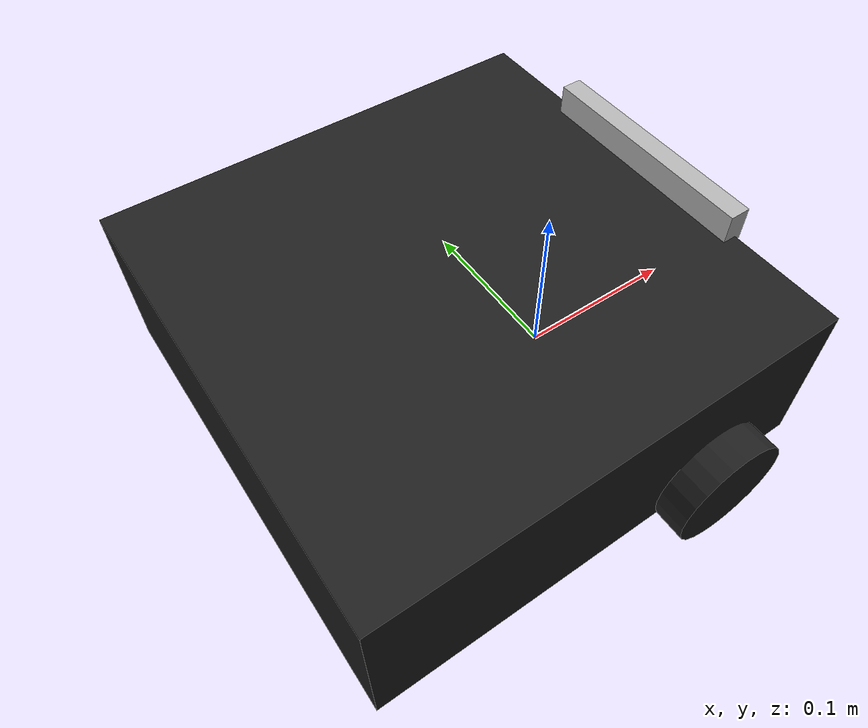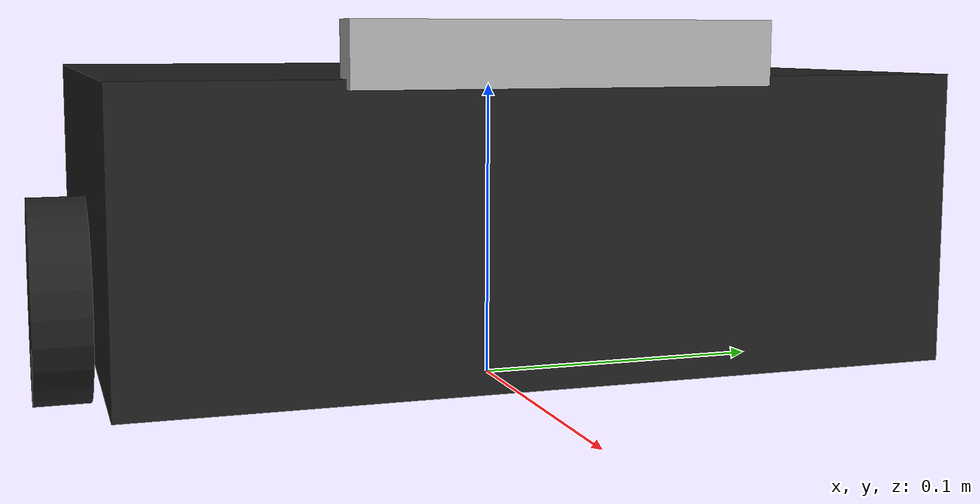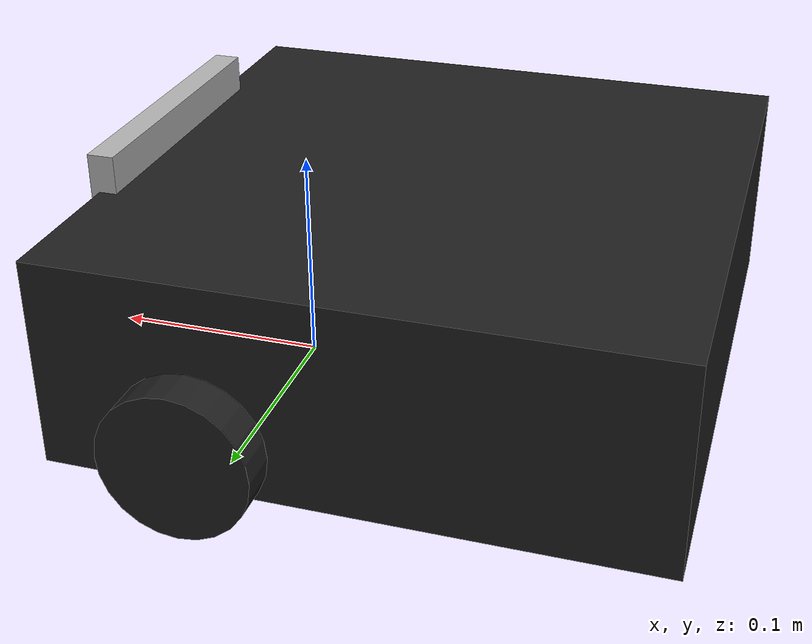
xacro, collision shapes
<?xml version="1.0" ?>
<robot name="turtlebot3_waffle" xmlns:xacro="http://ros.org/wiki/xacro">
  <xacro:arg name="namespace" default="robot_s" />

  <xacro:include filename="$(find turtlebot3_description)/urdf/common_properties.xacro"/>
  <xacro:include filename="$(find guide_robot)/urdf/robot_s.gazebo.xacro"/>

  <xacro:property name="r200_cam_rgb_px" value="0.005"/>
  <xacro:property name="r200_cam_rgb_py" value="0.018"/>
  <xacro:property name="r200_cam_rgb_pz" value="0.013"/>
  <xacro:property name="r200_cam_depth_offset" value="0.01"/>

  <link name="$(arg namespace)/base_footprint"/>

  <joint name="$(arg namespace)/base_joint" type="fixed">
    <parent link="$(arg namespace)/base_footprint"/>
    <child link="$(arg namespace)/base_link" />
    <origin xyz="0 0 0.010" rpy="0 0 0"/>
  </joint>

  <link name="$(arg namespace)/base_link">
    <visual>
      <origin xyz="-0.064 0 0.0" rpy="0 0 0"/>
      <geometry>
        <mesh filename="package://turtlebot3_description/meshes/bases/waffle_base.stl" scale="0.001 0.001 0.001"/>
      </geometry>
      <material name="light_black"/>
    </visual>

    <collision>
      <origin xyz="-0.064 0 0.047" rpy="0 0 0"/>
      <geometry>
        <box size="0.266 0.266 0.094"/>
      </geometry>
    </collision>

    <inertial>
      <origin xyz="0 0 0" rpy="0 0 0"/>
      <mass value="1.3729096e+00"/>
      <inertia ixx="8.7002718e-03" ixy="-4.7576583e-05" ixz="1.1160499e-04"
               iyy="8.6195418e-03" iyz="-3.5422299e-06"
               izz="1.4612727e-02" />
    </inertial>
  </link>

  <joint name="$(arg namespace)/wheel_left_joint" type="continuous">
    <parent link="$(arg namespace)/base_link"/>
    <child link="$(arg namespace)/wheel_left_link"/>
    <origin xyz="0.0 0.144 0.023" rpy="-1.57 0 0"/>
    <axis xyz="0 0 1"/>
  </joint>

  <link name="$(arg namespace)/wheel_left_link">
    <visual>
      <origin xyz="0 0 0" rpy="1.57 0 0"/>
      <geometry>
        <mesh filename="package://turtlebot3_description/meshes/wheels/left_tire.stl" scale="0.001 0.001 0.001"/>
      </geometry>
      <material name="dark"/>
    </visual>

    <collision>
      <origin xyz="0 0 0" rpy="0 0 0"/>
      <geometry>
        <cylinder length="0.018" radius="0.033"/>
      </geometry>
    </collision>

    <inertial>
      <origin xyz="0 0 0" />
      <mass value="2.8498940e-02" />
      <inertia ixx="1.1175580e-05" ixy="-4.2369783e-11" ixz="-5.9381719e-09"
               iyy="1.1192413e-05" iyz="-1.4400107e-11"
               izz="2.0712558e-05" />
      </inertial>
  </link>

  <joint name="$(arg namespace)/wheel_right_joint" type="continuous">
    <parent link="$(arg namespace)/base_link"/>
    <child link="$(arg namespace)/wheel_right_link"/>
    <origin xyz="0.0 -0.144 0.023" rpy="-1.57 0 0"/>
    <axis xyz="0 0 1"/>
  </joint>

  <link name="$(arg namespace)/wheel_right_link">
    <visual>
      <origin xyz="0 0 0" rpy="1.57 0 0"/>
      <geometry>
        <mesh filename="package://turtlebot3_description/meshes/wheels/right_tire.stl" scale="0.001 0.001 0.001"/>
      </geometry>
      <material name="dark"/>
    </visual>

    <collision>
      <origin xyz="0 0 0" rpy="0 0 0"/>
      <geometry>
        <cylinder length="0.018" radius="0.033"/>
      </geometry>
    </collision>

    <inertial>
      <origin xyz="0 0 0" />
      <mass value="2.8498940e-02" />
      <inertia ixx="1.1175580e-05" ixy="-4.2369783e-11" ixz="-5.9381719e-09"
               iyy="1.1192413e-05" iyz="-1.4400107e-11"
               izz="2.0712558e-05" />
      </inertial>
  </link>

  <joint name="$(arg namespace)/caster_back_right_joint" type="fixed">
    <parent link="$(arg namespace)/base_link"/>
    <child link="$(arg namespace)/caster_back_right_link"/>
    <origin xyz="-0.177 -0.064 -0.004" rpy="-1.57 0 0"/>
  </joint>

  <link name="$(arg namespace)/caster_back_right_link">
    <collision>
      <origin xyz="0 0.001 0" rpy="0 0 0"/>
      <geometry>
        <box size="0.030 0.009 0.020"/>
      </geometry>
    </collision>

    <inertial>
      <origin xyz="0 0 0" />
      <mass value="0.005" />
      <inertia ixx="0.001" ixy="0.0" ixz="0.0"
               iyy="0.001" iyz="0.0"
               izz="0.001" />
    </inertial>
  </link>

  <joint name="$(arg namespace)/caster_back_left_joint" type="fixed">
    <parent link="$(arg namespace)/base_link"/>
    <child link="$(arg namespace)/caster_back_left_link"/>
    <origin xyz="-0.177 0.064 -0.004" rpy="-1.57 0 0"/>
  </joint>

  <link name="$(arg namespace)/caster_back_left_link">
    <collision>
      <origin xyz="0 0.001 0" rpy="0 0 0"/>
      <geometry>
        <box size="0.030 0.009 0.020"/>
      </geometry>
    </collision>

    <inertial>
      <origin xyz="0 0 0" />
      <mass value="0.005" />
      <inertia ixx="0.001" ixy="0.0" ixz="0.0"
               iyy="0.001" iyz="0.0"
               izz="0.001" />
    </inertial>
  </link>

  <joint name="$(arg namespace)/imu_joint" type="fixed">
    <parent link="$(arg namespace)/base_link"/>
    <child link="$(arg namespace)/imu_link"/>
    <origin xyz="0.0 0 0.068" rpy="0 0 0"/>
  </joint>

  <link name="$(arg namespace)/imu_link"/>

  <joint name="$(arg namespace)/camera_joint" type="fixed">
    <origin xyz="0.064 -0.065 0.094" rpy="0 0 0"/>
    <parent link="$(arg namespace)/base_link"/>
    <child link="$(arg namespace)/camera_link"/>
  </joint>

  <link name="$(arg namespace)/camera_link">
    <visual>
     <origin xyz="0 0 0" rpy="1.57 0 1.57"/>
      <geometry>
       <mesh filename="package://turtlebot3_description/meshes/sensors/r200.dae" />
      </geometry>
    </visual>
    <collision>
      <origin xyz="0.003 0.065 0.007" rpy="0 0 0"/>
      <geometry>
        <box size="0.012 0.132 0.020"/>
      </geometry>
    </collision>

    <!-- This inertial field needs doesn't contain reliable data!! -->
  </link>

  <joint name="$(arg namespace)/camera_rgb_joint" type="fixed">
    <origin xyz="${r200_cam_rgb_px} ${r200_cam_rgb_py} ${r200_cam_rgb_pz}" rpy="0 0 0"/>
    <parent link="$(arg namespace)/camera_link"/>
    <child link="$(arg namespace)/camera_rgb_frame"/>
  </joint>
  <link name="$(arg namespace)/camera_rgb_frame"/>

  <joint name="$(arg namespace)/camera_rgb_optical_joint" type="fixed">
    <origin xyz="0 0 0" rpy="-1.57 0 -1.57"/>
    <parent link="$(arg namespace)/camera_rgb_frame"/>
    <child link="$(arg namespace)/camera_rgb_optical_frame"/>
  </joint>
  <link name="$(arg namespace)/camera_rgb_optical_frame"/>

</robot>
